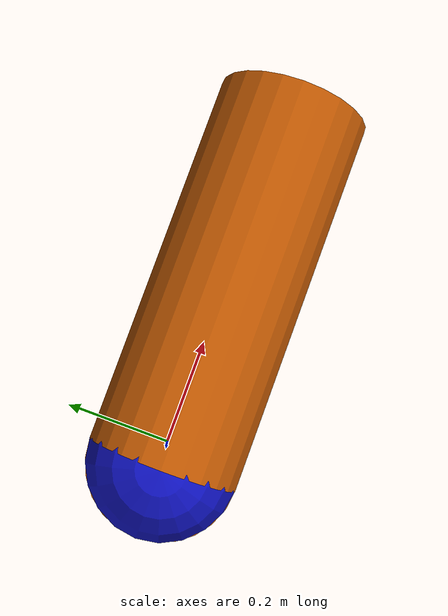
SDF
<?xml version='1.0'?>
<sdf version='1.7'>
  <model name='Cold_Gas_Thruster4'>
    <link name='thruster_base'>
      <inertial>
        <mass>0.1</mass>
        <inertia>
          <ixx>0.00233333</ixx>
          <ixy>0</ixy>
          <ixz>0</ixz>
          <iyy>0.00233333</iyy>
          <iyz>0</iyz>
          <izz>0.0005</izz>
        </inertia>
        <pose>0 0 0 0 -0 0</pose>
      </inertial>
      <pose>-0 -0 0.25 0 -0 0</pose>
      <gravity>1</gravity>
      <self_collide>0</self_collide>
      <kinematic>0</kinematic>
      <enable_wind>0</enable_wind>
      <visual name='visual'>
        <pose>0 0 0 0 -0 0</pose>
        <geometry>
          <cylinder>
            <radius>0.1</radius>
            <length>0.5</length>
          </cylinder>
        </geometry>
        <material>
          <lighting>1</lighting>
          <script>
            <uri>file://media/materials/scripts/gazebo.material</uri>
            <name>Gazebo/Grey</name>
          </script>
          <shader type='pixel'>
            <normal_map>__default__</normal_map>
          </shader>
          <emissive>0 0 0 1</emissive>
          <ambient>0.765 0.353 0.012 1</ambient>
          <diffuse>0.7 0.7 0.7 1</diffuse>
          <specular>0.01 0.01 0.01 1</specular>
        </material>
        <transparency>0</transparency>
        <cast_shadows>1</cast_shadows>
      </visual>
      <collision name='collision'>
        <laser_retro>0</laser_retro>
        <max_contacts>10</max_contacts>
        <pose>0 0 0 0 -0 0</pose>
        <geometry>
          <cylinder>
            <radius>0.1</radius>
            <length>0.5</length>
          </cylinder>
        </geometry>
        <surface>
          <friction>
            <ode>
              <mu>1</mu>
              <mu2>1</mu2>
              <fdir1>0 0 0</fdir1>
              <slip1>0</slip1>
              <slip2>0</slip2>
            </ode>
            <torsional>
              <coefficient>1</coefficient>
              <patch_radius>0</patch_radius>
              <surface_radius>0</surface_radius>
              <use_patch_radius>1</use_patch_radius>
              <ode>
                <slip>0</slip>
              </ode>
            </torsional>
          </friction>
          <bounce>
            <restitution_coefficient>0</restitution_coefficient>
            <threshold>1e+06</threshold>
          </bounce>
          <contact>
            <collide_without_contact>0</collide_without_contact>
            <collide_without_contact_bitmask>1</collide_without_contact_bitmask>
            <collide_bitmask>1</collide_bitmask>
            <ode>
              <soft_cfm>0</soft_cfm>
              <soft_erp>0.2</soft_erp>
              <kp>1e+13</kp>
              <kd>1</kd>
              <max_vel>0.01</max_vel>
              <min_depth>0</min_depth>
            </ode>
            <bullet>
              <split_impulse>1</split_impulse>
              <split_impulse_penetration_threshold>-0.01</split_impulse_penetration_threshold>
              <soft_cfm>0</soft_cfm>
              <soft_erp>0.2</soft_erp>
              <kp>1e+13</kp>
              <kd>1</kd>
            </bullet>
          </contact>
        </surface>
      </collision>
    </link>
    <link name='joint_ball'>
      <inertial>
        <mass>0.01</mass>
        <inertia>
          <ixx>0.001</ixx>
          <ixy>0</ixy>
          <ixz>0</ixz>
          <iyy>0.001</iyy>
          <iyz>0</iyz>
          <izz>0.001</izz>
        </inertia>
        <pose>0 0 0 0 -0 0</pose>
      </inertial>
      <pose>0 0 0.500 0 0 0</pose>
      <gravity>1</gravity>
      <self_collide>0</self_collide>
      <kinematic>0</kinematic>
      <enable_wind>0</enable_wind>
      <visual name='visual'>
        <pose>0 0 0 0 -0 0</pose>
        <geometry>
          <sphere>
            <radius>0.1</radius>
          </sphere>
        </geometry>
        <material>
          <lighting>1</lighting>
          <script>
            <uri>file://media/materials/scripts/gazebo.material</uri>
            <name>Gazebo/Grey</name>
          </script>
          <shader type='pixel'>
            <normal_map>__default__</normal_map>
          </shader>
          <ambient>0.063 0.075 0.773 1</ambient>
          <diffuse>0.7 0.7 0.7 1</diffuse>
          <specular>0.01 0.01 0.01 1</specular>
          <emissive>0 0 0 1</emissive>
        </material>
        <transparency>0</transparency>
        <cast_shadows>1</cast_shadows>
      </visual>
      <collision name='collision'>
        <laser_retro>0</laser_retro>
        <max_contacts>10</max_contacts>
        <pose>0 0 0 0 -0 0</pose>
        <geometry>
          <sphere>
            <radius>0.1</radius>
          </sphere>
        </geometry>
        <surface>
          <friction>
            <ode>
              <mu>1</mu>
              <mu2>1</mu2>
              <fdir1>0 0 0</fdir1>
              <slip1>0</slip1>
              <slip2>0</slip2>
            </ode>
            <torsional>
              <coefficient>1</coefficient>
              <patch_radius>0</patch_radius>
              <surface_radius>0</surface_radius>
              <use_patch_radius>1</use_patch_radius>
              <ode>
                <slip>0</slip>
              </ode>
            </torsional>
          </friction>
          <bounce>
            <restitution_coefficient>0</restitution_coefficient>
            <threshold>1e+06</threshold>
          </bounce>
          <contact>
            <collide_without_contact>0</collide_without_contact>
            <collide_without_contact_bitmask>1</collide_without_contact_bitmask>
            <collide_bitmask>1</collide_bitmask>
            <ode>
              <soft_cfm>0</soft_cfm>
              <soft_erp>0.2</soft_erp>
              <kp>1e+13</kp>
              <kd>1</kd>
              <max_vel>0.01</max_vel>
              <min_depth>0</min_depth>
            </ode>
            <bullet>
              <split_impulse>1</split_impulse>
              <split_impulse_penetration_threshold>-0.01</split_impulse_penetration_threshold>
              <soft_cfm>0</soft_cfm>
              <soft_erp>0.2</soft_erp>
              <kp>1e+13</kp>
              <kd>1</kd>
            </bullet>
          </contact>
        </surface>
      </collision>
    </link>
    <link name='thruster_arm'>
      <inertial>
        <mass>0.1</mass>
        <inertia>
          <ixx>0.145833</ixx>
          <ixy>0</ixy>
          <ixz>0</ixz>
          <iyy>0.145833</iyy>
          <iyz>0</iyz>
          <izz>0.125</izz>
        </inertia>
        <pose>0 0 0 0 -0 0</pose>
      </inertial>
      <pose>0.25 0 0.5 3.14159 1.57017 3.14159</pose>
      <gravity>1</gravity>
      <self_collide>0</self_collide>
      <kinematic>0</kinematic>
      <enable_wind>0</enable_wind>
      <visual name='visual'>
        <pose>0 0 0 0 -0 0</pose>
        <geometry>
          <cylinder>
            <radius>0.1</radius>
            <length>0.5</length>
          </cylinder>
        </geometry>
        <material>
          <lighting>1</lighting>
          <script>
            <uri>file://media/materials/scripts/gazebo.material</uri>
            <name>Gazebo/Grey</name>
          </script>
          <shader type='pixel'>
            <normal_map>__default__</normal_map>
          </shader>
          <emissive>0 0 0 1</emissive>
          <ambient>0.765 0.353 0.012 1</ambient>
          <diffuse>0.7 0.7 0.7 1</diffuse>
          <specular>0.01 0.01 0.01 1</specular>
        </material>
        <transparency>0</transparency>
        <cast_shadows>1</cast_shadows>
      </visual>
      <collision name='collision'>
        <laser_retro>0</laser_retro>
        <max_contacts>10</max_contacts>
        <pose>0 0 0 0 -0 0</pose>
        <geometry>
          <cylinder>
            <radius>0.1</radius>
            <length>0.5</length>
          </cylinder>
        </geometry>
        <surface>
          <friction>
            <ode>
              <mu>1</mu>
              <mu2>1</mu2>
              <fdir1>0 0 0</fdir1>
              <slip1>0</slip1>
              <slip2>0</slip2>
            </ode>
            <torsional>
              <coefficient>1</coefficient>
              <patch_radius>0</patch_radius>
              <surface_radius>0</surface_radius>
              <use_patch_radius>1</use_patch_radius>
              <ode>
                <slip>0</slip>
              </ode>
            </torsional>
          </friction>
          <bounce>
            <restitution_coefficient>0</restitution_coefficient>
            <threshold>1e+06</threshold>
          </bounce>
          <contact>
            <collide_without_contact>0</collide_without_contact>
            <collide_without_contact_bitmask>1</collide_without_contact_bitmask>
            <collide_bitmask>1</collide_bitmask>
            <ode>
              <soft_cfm>0</soft_cfm>
              <soft_erp>0.2</soft_erp>
              <kp>1e+13</kp>
              <kd>1</kd>
              <max_vel>0.01</max_vel>
              <min_depth>0</min_depth>
            </ode>
            <bullet>
              <split_impulse>1</split_impulse>
              <split_impulse_penetration_threshold>-0.01</split_impulse_penetration_threshold>
              <soft_cfm>0</soft_cfm>
              <soft_erp>0.2</soft_erp>
              <kp>1e+13</kp>
              <kd>1</kd>
            </bullet>
          </contact>
        </surface>
      </collision>
    </link>
    <joint name='joint_thrust_rotate' type='revolute'>
      <parent>thruster_base</parent>
      <child>thruster_arm</child>
      <pose>0 0 -0.25 0 -0 0</pose>
      <axis>
        <xyz>1 0 0</xyz>
        <limit>
          <lower>-1.5708</lower>
          <upper>1.5708</upper>
          <effort>-1</effort>
          <velocity>-1</velocity>
        </limit>
        <dynamics>
          <spring_reference>0</spring_reference>
          <spring_stiffness>0</spring_stiffness>
          <damping>0</damping>
          <friction>0</friction>
        </dynamics>
      </axis>
      <physics>
        <ode>
          <limit>
            <cfm>0</cfm>
            <erp>0.2</erp>
          </limit>
          <suspension>
            <cfm>0</cfm>
            <erp>0.2</erp>
          </suspension>
        </ode>
      </physics>
    </joint>
    <joint name='joint_thruster_arm_ball' type='fixed'>
      <parent>thruster_arm</parent>
      <child>joint_ball</child>
      <pose>0 0 0 0 -0 0</pose>
      <physics>
        <ode>
          <limit>
            <cfm>0</cfm>
            <erp>0.2</erp>
          </limit>
          <suspension>
            <cfm>0</cfm>
            <erp>0.2</erp>
          </suspension>
        </ode>
      </physics>
    </joint>
    <!-- Remove the below joint when placing on vehicle -->
    <joint name="fix to world" type='fixed'>
      <parent>world</parent>
      <child>thruster_base</child>
    </joint>
    <static>0</static>
    <allow_auto_disable>1</allow_auto_disable>
    <plugin name='thrust_fire' filename='libgazebo_ros_cold_gas_thruster.so'>
      <ros>
        <namespace>actuator</namespace>
        <remapping>cmd_vel:=cmd_direction</remapping>
      </ros>
      <max_force>7</max_force>
      <force_duration>10</force_duration> // In milliseconds
      <capacity>5000</capacity> // In milliseconds
      <servo_delay>10</servo_delay> // In milliseconds per degree

      <link_base>thruster_base</link_base>
      <link_arm>thruster_arm</link_arm>
      <joint_rotate>joint_thrust_rotate</joint_rotate>
    </plugin>
  </model>
</sdf>
